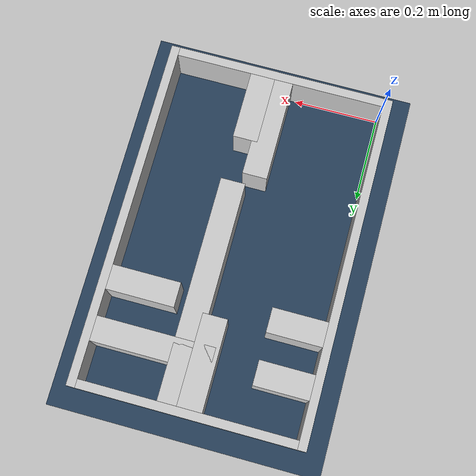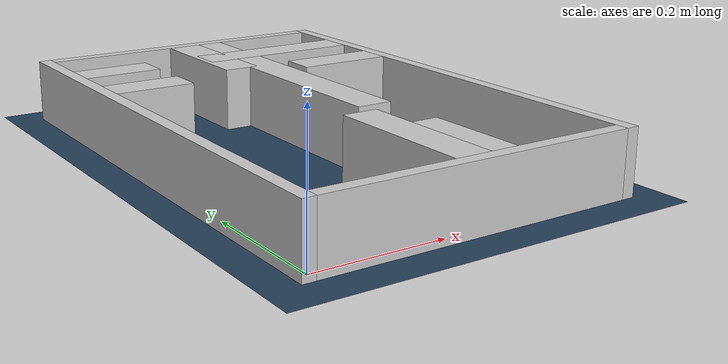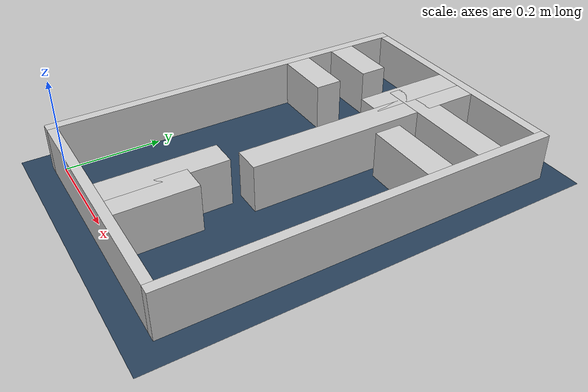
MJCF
<?xml version="1.0" ?>
<mujoco model="generated_real_template">
  <compiler angle="degree"/>
  <option timestep="0.002" integrator="implicitfast" iterations="100" cone="elliptic"/>
  <default>
    <geom density="1"/>
  </default>
  <asset>
    <texture builtin="gradient" height="3072" rgb1="0.3 0.5 0.7" rgb2="0 0 0" type="skybox" width="512"/>
    <texture builtin="checker" height="300" mark="edge" markrgb="0.8 0.8 0.8" name="groundplane" rgb1="0.2 0.3 0.4" rgb2="0.1 0.2 0.3" type="2d" width="300"/>
    <material name="groundplane" reflectance="0.2" texrepeat="5 5" texture="groundplane" texuniform="true"/>
  </asset>
  <worldbody>
    <light dir="0 0 -1" directional="true" pos="0 0 1.5"/>
    <geom name="floor" type="plane" condim="4" friction="0.5 0.005 0.001" material="groundplane" size="0 0 0.05"/>
    <body name="walls">
      <geom name="wall_boundary_left" type="box" condim="4" friction="1.0 0.005 0.0001" rgba="0.8 0.8 0.8 1" pos="-0.010000 0.387500 0.050000" euler="0 0 0.000000" size="0.010000 0.407500 0.050000"/>
      <geom name="wall_boundary_right" type="box" condim="4" friction="1.0 0.005 0.0001" rgba="0.8 0.8 0.8 1" pos="0.500000 0.387500 0.050000" euler="0 0 0.000000" size="0.010000 0.407500 0.050000"/>
      <geom name="wall_boundary_bottom" type="box" condim="4" friction="1.0 0.005 0.0001" rgba="0.8 0.8 0.8 1" pos="0.245000 -0.010000 0.050000" euler="0 0 0.000000" size="0.245000 0.010000 0.050000"/>
      <geom name="wall_boundary_top" type="box" condim="4" friction="1.0 0.005 0.0001" rgba="0.8 0.8 0.8 1" pos="0.245000 0.785000 0.050000" euler="0 0 0.000000" size="0.245000 0.010000 0.050000"/>
      <geom name="wall_inner_1_1" type="box" condim="4" friction="1.0 0.005 0.0001" rgba="0.8 0.8 0.8 1" pos="0.241423 0.118986 0.050000" euler="0 0 90.000000" size="0.118986 0.028500 0.050000"/>
      <geom name="wall_inner_1_2" type="box" condim="4" friction="1.0 0.005 0.0001" rgba="0.8 0.8 0.8 1" pos="0.241423 0.671393 0.050000" euler="0 0 90.000000" size="0.103607 0.028500 0.050000"/>
      <geom name="wall_inner_2_1" type="box" condim="4" friction="1.0 0.005 0.0001" rgba="0.8 0.8 0.8 1" pos="0.062846 0.662074 0.050000" euler="0 0 0.000000" size="0.062846 0.028500 0.050000"/>
      <geom name="wall_inner_2_2" type="box" condim="4" friction="1.0 0.005 0.0001" rgba="0.8 0.8 0.8 1" pos="0.355941 0.662074 0.050000" euler="0 0 0.000000" size="0.134059 0.028500 0.050000"/>
      <geom name="wall_inner_3_1" type="box" condim="4" friction="1.0 0.005 0.0001" rgba="0.8 0.8 0.8 1" pos="0.284966 0.079290 0.050000" euler="0 0 90.000000" size="0.079290 0.028500 0.050000"/>
      <geom name="wall_inner_3_2" type="box" condim="4" friction="1.0 0.005 0.0001" rgba="0.8 0.8 0.8 1" pos="0.284966 0.518466 0.050000" euler="0 0 90.000000" size="0.256534 0.028500 0.050000"/>
      <geom name="wall_inner_4_1" type="box" condim="4" friction="1.0 0.005 0.0001" rgba="0.8 0.8 0.8 1" pos="0.063356 0.544682 0.050000" euler="0 0 0.000000" size="0.063356 0.028500 0.050000"/>
      <geom name="wall_inner_4_2" type="box" condim="4" friction="1.0 0.005 0.0001" rgba="0.8 0.8 0.8 1" pos="0.411902 0.544682 0.050000" euler="0 0 0.000000" size="0.078098 0.028500 0.050000"/>
    </body>
  </worldbody>
</mujoco>
